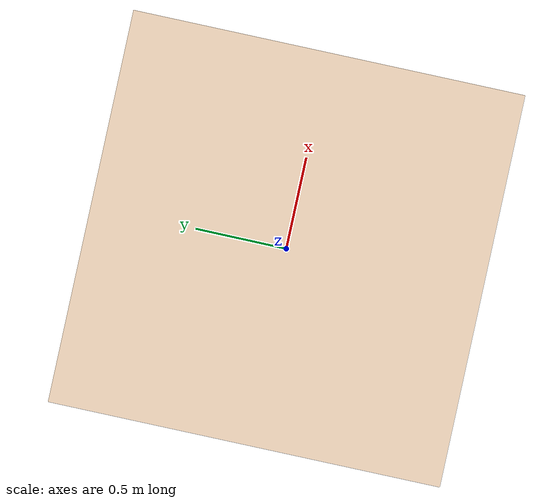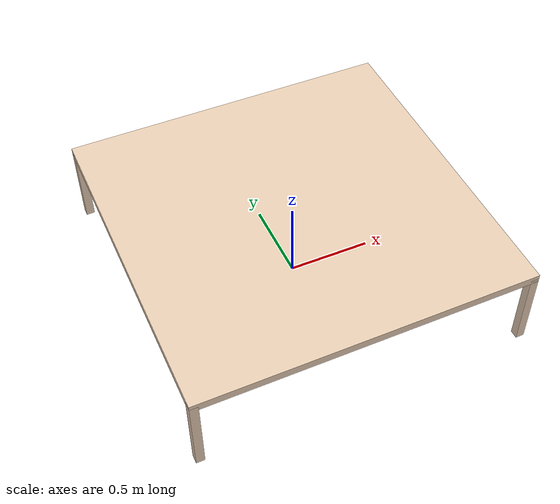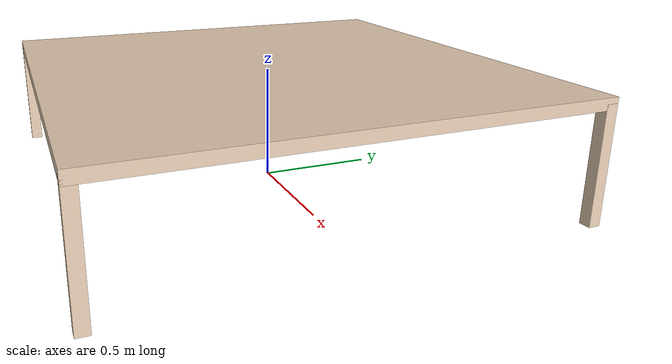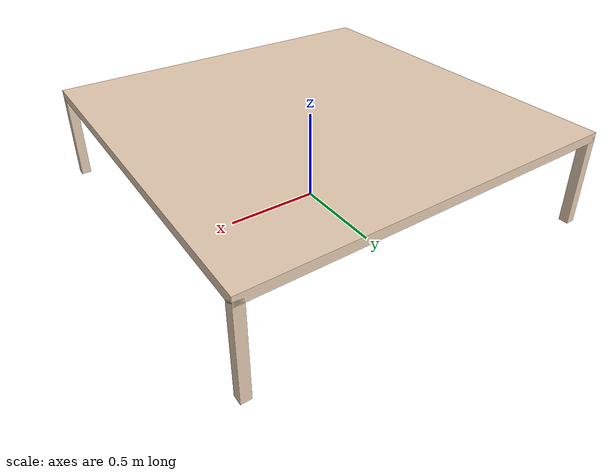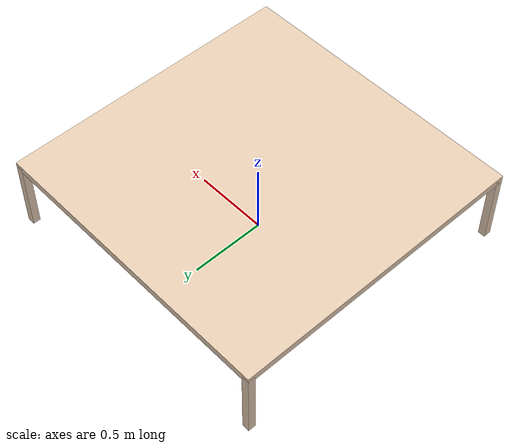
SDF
<?xml version="1.0"?>
<sdf version="1.7">
  <model name="table">
    <link name="table_top_link">
      <inertial>
        <inertia>
          <ixx>1</ixx>
          <ixy>0</ixy>
          <ixz>0</ixz>
          <iyy>1</iyy>
          <iyz>0</iyz>
          <izz>1</izz>
        </inertia>
        <mass>1000.0</mass>
      </inertial>
      <visual name="table_top_visual">
        <pose>0 0 0.5 0 0 0</pose>
        <geometry>
          <box>
            <size>2.0 2.0 0.05</size>
          </box>
        </geometry>
        <material>
          <diffuse>0.9 0.8 0.7 1.0</diffuse>
        </material>
      </visual>
      <collision name="table_top_collision">
        <pose>0 0 0.5 0 0 0</pose>
        <geometry>
          <box>
            <size>2.0 2.0 0.05</size>
          </box>
        </geometry>
        <drake:proximity_properties>
          <drake:compliant_hydroelastic/>
          <drake:hydroelastic_modulus>1e8</drake:hydroelastic_modulus>
          <drake:mesh_resolution_hint>1.0</drake:mesh_resolution_hint>
          <drake:mu_dynamic>0.3</drake:mu_dynamic>
          <drake:mu_static>0.3</drake:mu_static>
          <drake:hunt_crossley_dissipation>3.0</drake:hunt_crossley_dissipation>
        </drake:proximity_properties>
      </collision>
      <visual name="leg1_visual">
        <pose>0.975 0.975 0.25 0 0 0</pose>
        <geometry>
          <box>
            <size>0.05 0.05 0.5</size>
          </box>
        </geometry>
        <material>
          <diffuse>0.9 0.8 0.7 1.0</diffuse>
        </material>
      </visual>
      <collision name="leg1_collision">
        <pose>0.975 0.975 0.25 0 0 0</pose>
        <geometry>
          <box>
            <size>0.05 0.05 0.5</size>
          </box>
        </geometry>
      </collision>
      <visual name="leg2_visual">
        <pose>-0.975 0.975 0.25 0 0 0</pose>
        <geometry>
          <box>
            <size>0.05 0.05 0.5</size>
          </box>
        </geometry>
        <material>
          <diffuse>0.9 0.8 0.7 1.0</diffuse>
        </material>
      </visual>
      <collision name="leg2_collision">
        <pose>-0.975 0.975 0.25 0 0 0</pose>
        <geometry>
          <box>
            <size>0.05 0.05 0.5</size>
          </box>
        </geometry>
      </collision>
      <visual name="leg3_visual">
        <pose>0.975 -0.975 0.25 0 0 0</pose>
        <geometry>
          <box>
            <size>0.05 0.05 0.5</size>
          </box>
        </geometry>
        <material>
          <diffuse>0.9 0.8 0.7 1.0</diffuse>
        </material>
      </visual>
      <collision name="leg3_collision">
        <pose>0.975 -0.975 0.25 0 0 0</pose>
        <geometry>
          <box>
            <size>0.05 0.05 0.5</size>
          </box>
        </geometry>
      </collision>
      <visual name="leg4_visual">
        <pose>-0.975 -0.975 0.25 0 0 0</pose>
        <geometry>
          <box>
            <size>0.05 0.05 0.5</size>
          </box>
        </geometry>
        <material>
          <diffuse>0.9 0.8 0.7 1.0</diffuse>
        </material>
      </visual>
      <collision name="leg4_collision">
        <pose>-0.975 -0.975 0.25 0 0 0</pose>
        <geometry>
          <box>
            <size>0.05 0.05 0.5</size>
          </box>
        </geometry>
      </collision>
    </link>
    <frame name="table_top_center">
      <pose relative_to="table_top_link">0 0 0.525 0 0 0</pose>
    </frame>
    <frame name="table_bottom_center">
      <pose relative_to="table_top_link">0 0 0 0 0 0</pose>
    </frame>
  </model>
</sdf>
